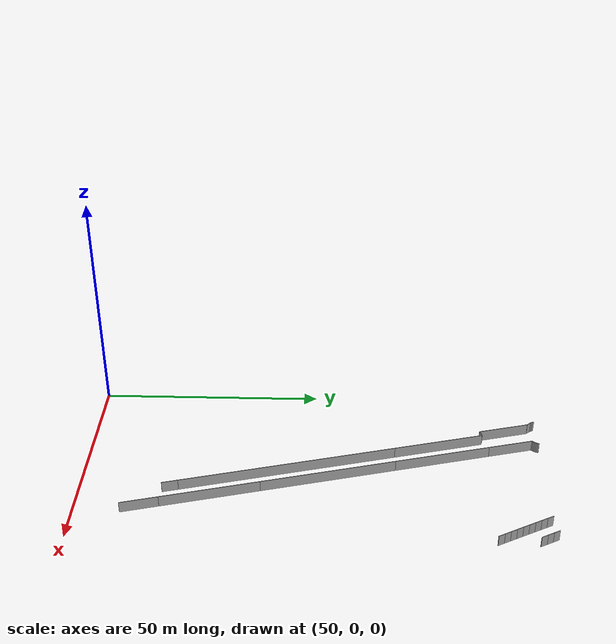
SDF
<?xml version="1.0" ?>
<sdf version="1.6">
  <model name="sps_0206">
    <pose frame="">0 0 0 0 -0 0</pose>
    <static>1</static>
    <self_collide>0</self_collide>
    <allow_auto_disable>0</allow_auto_disable>
    <link name="Wall172">
      <kinematic>0</kinematic>
      <gravity>1</gravity>
      <self_collide>0</self_collide>
      <collision name="collision">
        <geometry>
          <box>
            <size>21.6386 0.15 2.5</size>
          </box>
        </geometry>
        <pose frame="">0 0 0 0 -0 0</pose>
      </collision>
      <visual name="visual">
        <geometry>
          <box>
            <size>21.6386 0.15 2.5</size>
          </box>
        </geometry>
        <pose frame="">0 0 0 0 -0 0</pose>
        <cast_shadows>1</cast_shadows>
        <transparency>0.0</transparency>
      </visual>
      <pose frame="">73.9429 78.3484 1.25 0 0 -1.31066</pose>
    </link>
    <link name="Wall173">
      <kinematic>0</kinematic>
      <gravity>1</gravity>
      <self_collide>0</self_collide>
      <collision name="collision">
        <geometry>
          <box>
            <size>30.1057 0.15 2.5</size>
          </box>
        </geometry>
        <pose frame="">0 0 0 0 -0 0</pose>
      </collision>
      <visual name="visual">
        <geometry>
          <box>
            <size>30.1057 0.15 2.5</size>
          </box>
        </geometry>
        <pose frame="">0 0 0 0 -0 0</pose>
        <cast_shadows>1</cast_shadows>
        <transparency>0.0</transparency>
      </visual>
      <pose frame="">80.5976 53.3467 1.25 0 0 -1.31066</pose>
    </link>
    <link name="Wall174">
      <kinematic>0</kinematic>
      <gravity>1</gravity>
      <self_collide>0</self_collide>
      <collision name="collision">
        <geometry>
          <box>
            <size>21.6351 0.15 2.5</size>
          </box>
        </geometry>
        <pose frame="">0 0 0 0 -0 0</pose>
      </collision>
      <visual name="visual">
        <geometry>
          <box>
            <size>21.6351 0.15 2.5</size>
          </box>
        </geometry>
        <pose frame="">0 0 0 0 -0 0</pose>
        <cast_shadows>1</cast_shadows>
        <transparency>0.0</transparency>
      </visual>
      <pose frame="">87.2519 28.3467 1.25 0 0 -1.31066</pose>
    </link>
    <link name="Wall175">
      <kinematic>0</kinematic>
      <gravity>1</gravity>
      <self_collide>0</self_collide>
      <collision name="collision">
        <geometry>
          <box>
            <size>8.21228 0.15 2.5</size>
          </box>
        </geometry>
        <pose frame="">0 0 0 0 -0 0</pose>
      </collision>
      <visual name="visual">
        <geometry>
          <box>
            <size>8.21228 0.15 2.5</size>
          </box>
        </geometry>
        <pose frame="">0 0 0 0 -0 0</pose>
        <cast_shadows>1</cast_shadows>
        <transparency>0.0</transparency>
      </visual>
      <pose frame="">91.0905 13.9251 1.25 0 0 -1.31066</pose>
    </link>
    <link name="Wall507">
      <kinematic>0</kinematic>
      <gravity>1</gravity>
      <self_collide>0</self_collide>
      <collision name="collision">
        <geometry>
          <box>
            <size>3.51225 0.15 2.5</size>
          </box>
        </geometry>
        <pose frame="">0 0 0 0 -0 0</pose>
      </collision>
      <visual name="visual">
        <geometry>
          <box>
            <size>3.51225 0.15 2.5</size>
          </box>
        </geometry>
        <pose frame="">0 0 0 0 -0 0</pose>
        <cast_shadows>1</cast_shadows>
        <transparency>0.0</transparency>
      </visual>
      <pose frame="">84.9216 19.59 1.25 0 -0 1.83122</pose>
    </link>
    <link name="Wall508">
      <kinematic>0</kinematic>
      <gravity>1</gravity>
      <self_collide>0</self_collide>
      <collision name="collision">
        <geometry>
          <box>
            <size>48.2326 0.15 2.5</size>
          </box>
        </geometry>
        <pose frame="">0 0 0 0 -0 0</pose>
      </collision>
      <visual name="visual">
        <geometry>
          <box>
            <size>48.2326 0.15 2.5</size>
          </box>
        </geometry>
        <pose frame="">0 0 0 0 -0 0</pose>
        <cast_shadows>1</cast_shadows>
        <transparency>0.0</transparency>
      </visual>
      <pose frame="">78.2596 44.59 1.25 0 -0 1.83122</pose>
    </link>
    <link name="Wall509">
      <kinematic>0</kinematic>
      <gravity>1</gravity>
      <self_collide>0</self_collide>
      <collision name="collision">
        <geometry>
          <box>
            <size>20.4345 0.15 2.5</size>
          </box>
        </geometry>
        <pose frame="">0 0 0 0 -0 0</pose>
      </collision>
      <visual name="visual">
        <geometry>
          <box>
            <size>20.4345 0.15 2.5</size>
          </box>
        </geometry>
        <pose frame="">0 0 0 0 -0 0</pose>
        <cast_shadows>1</cast_shadows>
        <transparency>0.0</transparency>
      </visual>
      <pose frame="">69.4189 77.7658 1.25 0 -0 1.83122</pose>
    </link>
    <link name="Wall1874">
      <kinematic>0</kinematic>
      <gravity>1</gravity>
      <self_collide>0</self_collide>
      <collision name="collision">
        <geometry>
          <box>
            <size>0.359038 0.15 2.5</size>
          </box>
        </geometry>
        <pose frame="">0 0 0 0 -0 0</pose>
      </collision>
      <visual name="visual">
        <geometry>
          <box>
            <size>0.359038 0.15 2.5</size>
          </box>
        </geometry>
        <pose frame="">0 0 0 0 -0 0</pose>
        <cast_shadows>1</cast_shadows>
        <transparency>0.0</transparency>
      </visual>
      <pose frame="">69.4558 99.9186 1.25 0 0 -1.96292</pose>
    </link>
    <link name="Wall1875">
      <kinematic>0</kinematic>
      <gravity>1</gravity>
      <self_collide>0</self_collide>
      <collision name="collision">
        <geometry>
          <box>
            <size>0.359042 0.15 2.5</size>
          </box>
        </geometry>
        <pose frame="">0 0 0 0 -0 0</pose>
      </collision>
      <visual name="visual">
        <geometry>
          <box>
            <size>0.359042 0.15 2.5</size>
          </box>
        </geometry>
        <pose frame="">0 0 0 0 -0 0</pose>
        <cast_shadows>1</cast_shadows>
        <transparency>0.0</transparency>
      </visual>
      <pose frame="">69.3052 99.593 1.25 0 0 -2.04516</pose>
    </link>
    <link name="Wall1876">
      <kinematic>0</kinematic>
      <gravity>1</gravity>
      <self_collide>0</self_collide>
      <collision name="collision">
        <geometry>
          <box>
            <size>0.359012 0.15 2.5</size>
          </box>
        </geometry>
        <pose frame="">0 0 0 0 -0 0</pose>
      </collision>
      <visual name="visual">
        <geometry>
          <box>
            <size>0.359012 0.15 2.5</size>
          </box>
        </geometry>
        <pose frame="">0 0 0 0 -0 0</pose>
        <cast_shadows>1</cast_shadows>
        <transparency>0.0</transparency>
      </visual>
      <pose frame="">69.1285 99.2808 1.25 0 0 -2.12649</pose>
    </link>
    <link name="Wall1877">
      <kinematic>0</kinematic>
      <gravity>1</gravity>
      <self_collide>0</self_collide>
      <collision name="collision">
        <geometry>
          <box>
            <size>0.359002 0.15 2.5</size>
          </box>
        </geometry>
        <pose frame="">0 0 0 0 -0 0</pose>
      </collision>
      <visual name="visual">
        <geometry>
          <box>
            <size>0.359002 0.15 2.5</size>
          </box>
        </geometry>
        <pose frame="">0 0 0 0 -0 0</pose>
        <cast_shadows>1</cast_shadows>
        <transparency>0.0</transparency>
      </visual>
      <pose frame="">68.9269 98.9841 1.25 0 0 -2.20875</pose>
    </link>
    <link name="Wall1878">
      <kinematic>0</kinematic>
      <gravity>1</gravity>
      <self_collide>0</self_collide>
      <collision name="collision">
        <geometry>
          <box>
            <size>0.359012 0.15 2.5</size>
          </box>
        </geometry>
        <pose frame="">0 0 0 0 -0 0</pose>
      </collision>
      <visual name="visual">
        <geometry>
          <box>
            <size>0.359012 0.15 2.5</size>
          </box>
        </geometry>
        <pose frame="">0 0 0 0 -0 0</pose>
        <cast_shadows>1</cast_shadows>
        <transparency>0.0</transparency>
      </visual>
      <pose frame="">68.7018 98.7048 1.25 0 0 -2.28955</pose>
    </link>
    <link name="Wall1879">
      <kinematic>0</kinematic>
      <gravity>1</gravity>
      <self_collide>0</self_collide>
      <collision name="collision">
        <geometry>
          <box>
            <size>10.1002 0.15 2.5</size>
          </box>
        </geometry>
        <pose frame="">0 0 0 0 -0 0</pose>
      </collision>
      <visual name="visual">
        <geometry>
          <box>
            <size>10.1002 0.15 2.5</size>
          </box>
        </geometry>
        <pose frame="">0 0 0 0 -0 0</pose>
        <cast_shadows>1</cast_shadows>
        <transparency>0.0</transparency>
      </visual>
      <pose frame="">69.8718 93.6867 1.25 0 0 -1.31286</pose>
    </link>
    <link name="Wall1880">
      <kinematic>0</kinematic>
      <gravity>1</gravity>
      <self_collide>0</self_collide>
      <collision name="collision">
        <geometry>
          <box>
            <size>81.5918 0.15 2.5</size>
          </box>
        </geometry>
        <pose frame="">0 0 0 0 -0 0</pose>
      </collision>
      <visual name="visual">
        <geometry>
          <box>
            <size>81.5918 0.15 2.5</size>
          </box>
        </geometry>
        <pose frame="">0 0 0 0 -0 0</pose>
        <cast_shadows>1</cast_shadows>
        <transparency>0.0</transparency>
      </visual>
      <pose frame="">81.6533 49.3804 1.25 0 0 -1.31066</pose>
    </link>
    <link name="Wall1894">
      <kinematic>0</kinematic>
      <gravity>1</gravity>
      <self_collide>0</self_collide>
      <collision name="collision">
        <geometry>
          <box>
            <size>1.45081 0.15 2.5</size>
          </box>
        </geometry>
        <pose frame="">0 0 0 0 -0 0</pose>
      </collision>
      <visual name="visual">
        <geometry>
          <box>
            <size>1.45081 0.15 2.5</size>
          </box>
        </geometry>
        <pose frame="">0 0 0 0 -0 0</pose>
        <cast_shadows>1</cast_shadows>
        <transparency>0.0</transparency>
      </visual>
      <pose frame="">66.0871 87.4519 1.25 0 0 -2.88141</pose>
    </link>
    <link name="Wall1895">
      <kinematic>0</kinematic>
      <gravity>1</gravity>
      <self_collide>0</self_collide>
      <collision name="collision">
        <geometry>
          <box>
            <size>11.4693 0.15 2.5</size>
          </box>
        </geometry>
        <pose frame="">0 0 0 0 -0 0</pose>
      </collision>
      <visual name="visual">
        <geometry>
          <box>
            <size>11.4693 0.15 2.5</size>
          </box>
        </geometry>
        <pose frame="">0 0 0 0 -0 0</pose>
        <cast_shadows>1</cast_shadows>
        <transparency>0.0</transparency>
      </visual>
      <pose frame="">63.9096 92.8066 1.25 0 -0 1.8312</pose>
    </link>
    <link name="Wall1896">
      <kinematic>0</kinematic>
      <gravity>1</gravity>
      <self_collide>0</self_collide>
      <collision name="collision">
        <geometry>
          <box>
            <size>1.00383 0.15 2.5</size>
          </box>
        </geometry>
        <pose frame="">0 0 0 0 -0 0</pose>
      </collision>
      <visual name="visual">
        <geometry>
          <box>
            <size>1.00383 0.15 2.5</size>
          </box>
        </geometry>
        <pose frame="">0 0 0 0 -0 0</pose>
        <cast_shadows>1</cast_shadows>
        <transparency>0.0</transparency>
      </visual>
      <pose frame="">62.103 98.726 1.25 0 -0 2.28856</pose>
    </link>
    <link name="Wall1897">
      <kinematic>0</kinematic>
      <gravity>1</gravity>
      <self_collide>0</self_collide>
      <collision name="collision">
        <geometry>
          <box>
            <size>0.335332 0.15 2.5</size>
          </box>
        </geometry>
        <pose frame="">0 0 0 0 -0 0</pose>
      </collision>
      <visual name="visual">
        <geometry>
          <box>
            <size>0.335332 0.15 2.5</size>
          </box>
        </geometry>
        <pose frame="">0 0 0 0 -0 0</pose>
        <cast_shadows>1</cast_shadows>
        <transparency>0.0</transparency>
      </visual>
      <pose frame="">61.6831 99.2457 1.25 0 -0 2.13588</pose>
    </link>
    <link name="Wall1898">
      <kinematic>0</kinematic>
      <gravity>1</gravity>
      <self_collide>0</self_collide>
      <collision name="collision">
        <geometry>
          <box>
            <size>0.33527 0.15 2.5</size>
          </box>
        </geometry>
        <pose frame="">0 0 0 0 -0 0</pose>
      </collision>
      <visual name="visual">
        <geometry>
          <box>
            <size>0.33527 0.15 2.5</size>
          </box>
        </geometry>
        <pose frame="">0 0 0 0 -0 0</pose>
        <cast_shadows>1</cast_shadows>
        <transparency>0.0</transparency>
      </visual>
      <pose frame="">61.5146 99.5353 1.25 0 -0 2.05952</pose>
    </link>
    <link name="Wall1899">
      <kinematic>0</kinematic>
      <gravity>1</gravity>
      <self_collide>0</self_collide>
      <collision name="collision">
        <geometry>
          <box>
            <size>0.335136 0.15 2.5</size>
          </box>
        </geometry>
        <pose frame="">0 0 0 0 -0 0</pose>
      </collision>
      <visual name="visual">
        <geometry>
          <box>
            <size>0.335136 0.15 2.5</size>
          </box>
        </geometry>
        <pose frame="">0 0 0 0 -0 0</pose>
        <cast_shadows>1</cast_shadows>
        <transparency>0.0</transparency>
      </visual>
      <pose frame="">61.3687 99.8368 1.25 0 -0 1.98344</pose>
    </link>
    <link name="Wall8363">
      <kinematic>0</kinematic>
      <gravity>1</gravity>
      <self_collide>0</self_collide>
      <collision name="collision">
        <geometry>
          <box>
            <size>1.49892 0.15 2.5</size>
          </box>
        </geometry>
        <pose frame="">0 0 0 0 -0 0</pose>
      </collision>
      <visual name="visual">
        <geometry>
          <box>
            <size>1.49892 0.15 2.5</size>
          </box>
        </geometry>
        <pose frame="">0 0 0 0 -0 0</pose>
        <cast_shadows>1</cast_shadows>
        <transparency>0.0</transparency>
      </visual>
      <pose frame="">94.2035 98.8159 1.25 0 0 -1.08457</pose>
    </link>
    <link name="Wall8364">
      <kinematic>0</kinematic>
      <gravity>1</gravity>
      <self_collide>0</self_collide>
      <collision name="collision">
        <geometry>
          <box>
            <size>1.499 0.15 2.5</size>
          </box>
        </geometry>
        <pose frame="">0 0 0 0 -0 0</pose>
      </collision>
      <visual name="visual">
        <geometry>
          <box>
            <size>1.499 0.15 2.5</size>
          </box>
        </geometry>
        <pose frame="">0 0 0 0 -0 0</pose>
        <cast_shadows>1</cast_shadows>
        <transparency>0.0</transparency>
      </visual>
      <pose frame="">94.905 97.4912 1.25 0 0 -1.08298</pose>
    </link>
    <link name="Wall8365">
      <kinematic>0</kinematic>
      <gravity>1</gravity>
      <self_collide>0</self_collide>
      <collision name="collision">
        <geometry>
          <box>
            <size>1.49876 0.15 2.5</size>
          </box>
        </geometry>
        <pose frame="">0 0 0 0 -0 0</pose>
      </collision>
      <visual name="visual">
        <geometry>
          <box>
            <size>1.49876 0.15 2.5</size>
          </box>
        </geometry>
        <pose frame="">0 0 0 0 -0 0</pose>
        <cast_shadows>1</cast_shadows>
        <transparency>0.0</transparency>
      </visual>
      <pose frame="">95.6085 96.1677 1.25 0 0 -1.08138</pose>
    </link>
    <link name="Wall8366">
      <kinematic>0</kinematic>
      <gravity>1</gravity>
      <self_collide>0</self_collide>
      <collision name="collision">
        <geometry>
          <box>
            <size>1.49912 0.15 2.5</size>
          </box>
        </geometry>
        <pose frame="">0 0 0 0 -0 0</pose>
      </collision>
      <visual name="visual">
        <geometry>
          <box>
            <size>1.49912 0.15 2.5</size>
          </box>
        </geometry>
        <pose frame="">0 0 0 0 -0 0</pose>
        <cast_shadows>1</cast_shadows>
        <transparency>0.0</transparency>
      </visual>
      <pose frame="">96.3143 94.8453 1.25 0 0 -1.0798</pose>
    </link>
    <link name="Wall8367">
      <kinematic>0</kinematic>
      <gravity>1</gravity>
      <self_collide>0</self_collide>
      <collision name="collision">
        <geometry>
          <box>
            <size>1.49894 0.15 2.5</size>
          </box>
        </geometry>
        <pose frame="">0 0 0 0 -0 0</pose>
      </collision>
      <visual name="visual">
        <geometry>
          <box>
            <size>1.49894 0.15 2.5</size>
          </box>
        </geometry>
        <pose frame="">0 0 0 0 -0 0</pose>
        <cast_shadows>1</cast_shadows>
        <transparency>0.0</transparency>
      </visual>
      <pose frame="">97.0221 93.5239 1.25 0 0 -1.0783</pose>
    </link>
    <link name="Wall8368">
      <kinematic>0</kinematic>
      <gravity>1</gravity>
      <self_collide>0</self_collide>
      <collision name="collision">
        <geometry>
          <box>
            <size>1.49897 0.15 2.5</size>
          </box>
        </geometry>
        <pose frame="">0 0 0 0 -0 0</pose>
      </collision>
      <visual name="visual">
        <geometry>
          <box>
            <size>1.49897 0.15 2.5</size>
          </box>
        </geometry>
        <pose frame="">0 0 0 0 -0 0</pose>
        <cast_shadows>1</cast_shadows>
        <transparency>0.0</transparency>
      </visual>
      <pose frame="">97.732 92.2037 1.25 0 0 -1.07655</pose>
    </link>
    <link name="Wall8369">
      <kinematic>0</kinematic>
      <gravity>1</gravity>
      <self_collide>0</self_collide>
      <collision name="collision">
        <geometry>
          <box>
            <size>1.49863 0.15 2.5</size>
          </box>
        </geometry>
        <pose frame="">0 0 0 0 -0 0</pose>
      </collision>
      <visual name="visual">
        <geometry>
          <box>
            <size>1.49863 0.15 2.5</size>
          </box>
        </geometry>
        <pose frame="">0 0 0 0 -0 0</pose>
        <cast_shadows>1</cast_shadows>
        <transparency>0.0</transparency>
      </visual>
      <pose frame="">98.444 90.8848 1.25 0 0 -1.075</pose>
    </link>
    <link name="Wall8370">
      <kinematic>0</kinematic>
      <gravity>1</gravity>
      <self_collide>0</self_collide>
      <collision name="collision">
        <geometry>
          <box>
            <size>1.49897 0.15 2.5</size>
          </box>
        </geometry>
        <pose frame="">0 0 0 0 -0 0</pose>
      </collision>
      <visual name="visual">
        <geometry>
          <box>
            <size>1.49897 0.15 2.5</size>
          </box>
        </geometry>
        <pose frame="">0 0 0 0 -0 0</pose>
        <cast_shadows>1</cast_shadows>
        <transparency>0.0</transparency>
      </visual>
      <pose frame="">99.158 89.567 1.25 0 0 -1.07355</pose>
    </link>
    <link name="Wall8371">
      <kinematic>0</kinematic>
      <gravity>1</gravity>
      <self_collide>0</self_collide>
      <collision name="collision">
        <geometry>
          <box>
            <size>1.49887 0.15 2.5</size>
          </box>
        </geometry>
        <pose frame="">0 0 0 0 -0 0</pose>
      </collision>
      <visual name="visual">
        <geometry>
          <box>
            <size>1.49887 0.15 2.5</size>
          </box>
        </geometry>
        <pose frame="">0 0 0 0 -0 0</pose>
        <cast_shadows>1</cast_shadows>
        <transparency>0.0</transparency>
      </visual>
      <pose frame="">99.874 88.2502 1.25 0 0 -1.07189</pose>
    </link>
    <link name="Wall9445">
      <kinematic>0</kinematic>
      <gravity>1</gravity>
      <self_collide>0</self_collide>
      <collision name="collision">
        <geometry>
          <box>
            <size>1.49253 0.15 2.5</size>
          </box>
        </geometry>
        <pose frame="">0 0 0 0 -0 0</pose>
      </collision>
      <visual name="visual">
        <geometry>
          <box>
            <size>1.49253 0.15 2.5</size>
          </box>
        </geometry>
        <pose frame="">0 0 0 0 -0 0</pose>
        <cast_shadows>1</cast_shadows>
        <transparency>0.0</transparency>
      </visual>
      <pose frame="">98.562 99.4321 1.25 0 0 -1.08295</pose>
    </link>
    <link name="Wall9446">
      <kinematic>0</kinematic>
      <gravity>1</gravity>
      <self_collide>0</self_collide>
      <collision name="collision">
        <geometry>
          <box>
            <size>1.4924 0.15 2.5</size>
          </box>
        </geometry>
        <pose frame="">0 0 0 0 -0 0</pose>
      </collision>
      <visual name="visual">
        <geometry>
          <box>
            <size>1.4924 0.15 2.5</size>
          </box>
        </geometry>
        <pose frame="">0 0 0 0 -0 0</pose>
        <cast_shadows>1</cast_shadows>
        <transparency>0.0</transparency>
      </visual>
      <pose frame="">99.2626 98.1143 1.25 0 0 -1.08138</pose>
    </link>
    <link name="Wall9447">
      <kinematic>0</kinematic>
      <gravity>1</gravity>
      <self_collide>0</self_collide>
      <collision name="collision">
        <geometry>
          <box>
            <size>1.49232 0.15 2.5</size>
          </box>
        </geometry>
        <pose frame="">0 0 0 0 -0 0</pose>
      </collision>
      <visual name="visual">
        <geometry>
          <box>
            <size>1.49232 0.15 2.5</size>
          </box>
        </geometry>
        <pose frame="">0 0 0 0 -0 0</pose>
        <cast_shadows>1</cast_shadows>
        <transparency>0.0</transparency>
      </visual>
      <pose frame="">99.9652 96.7977 1.25 0 0 -1.07982</pose>
    </link>
  </model>
</sdf>
